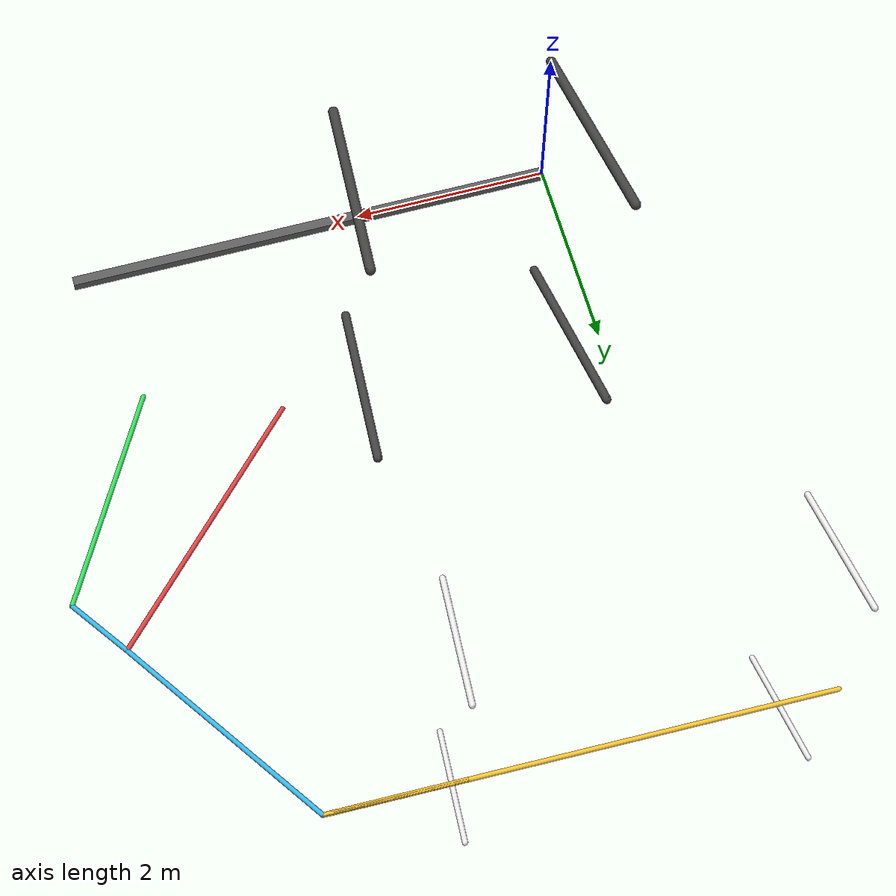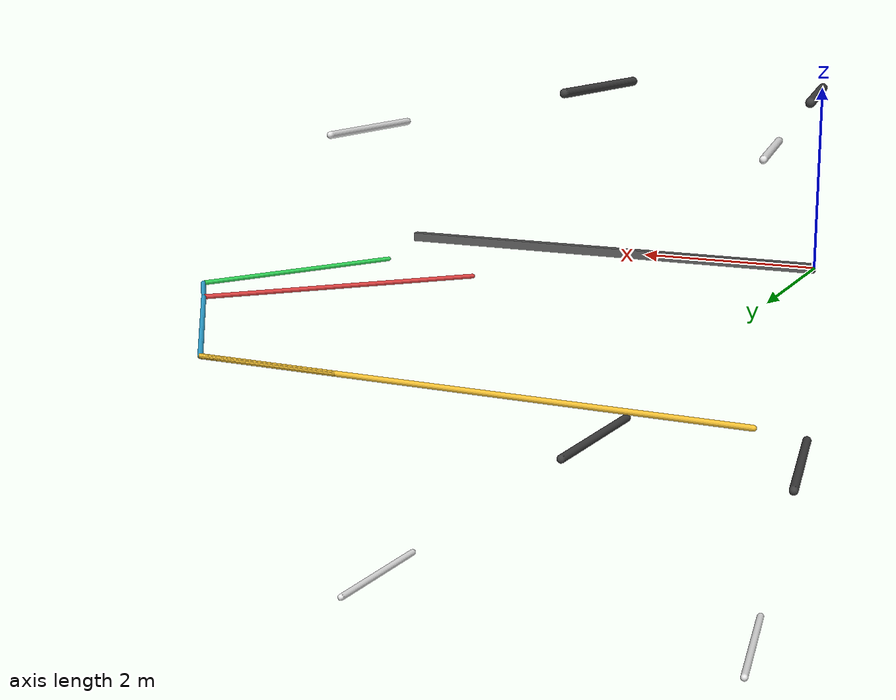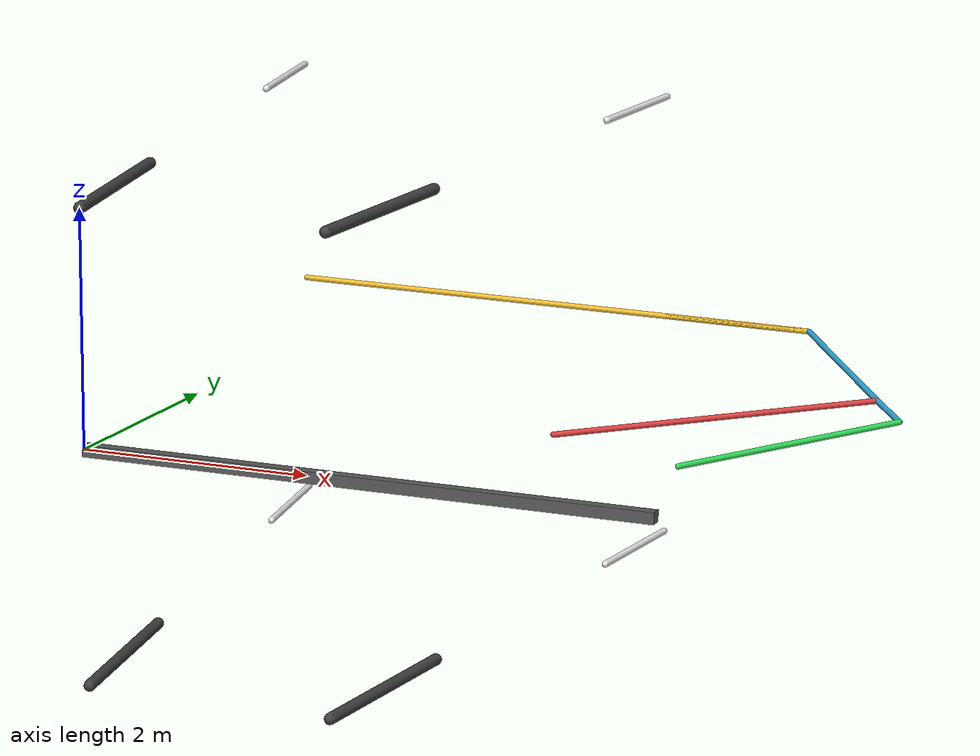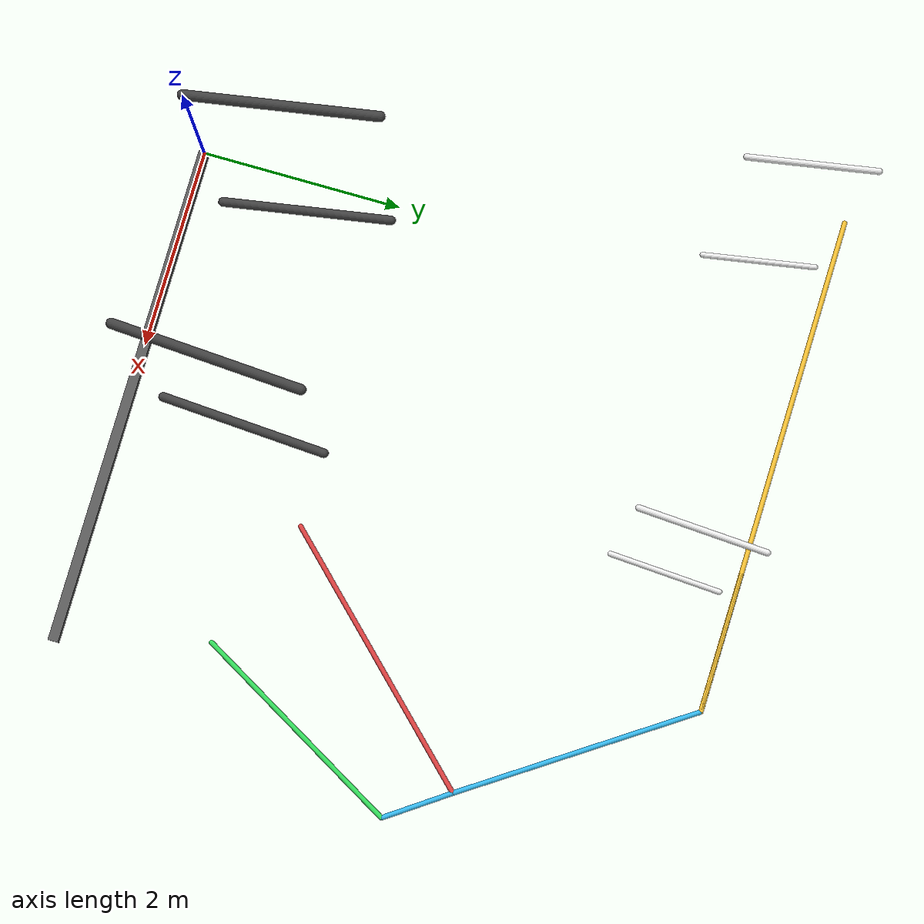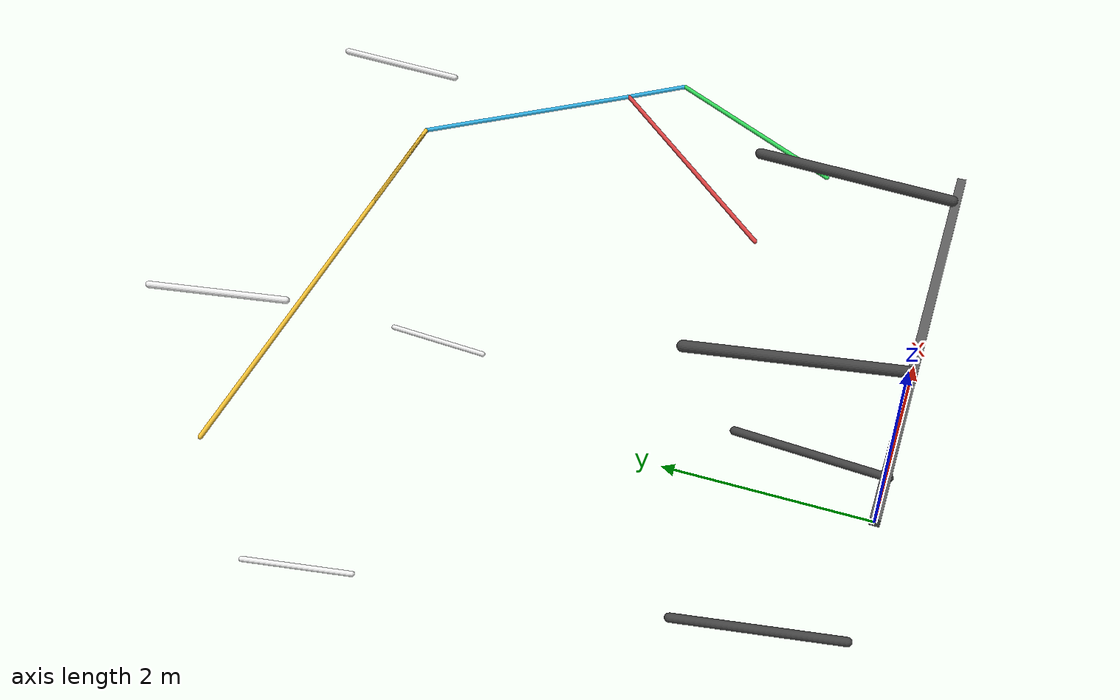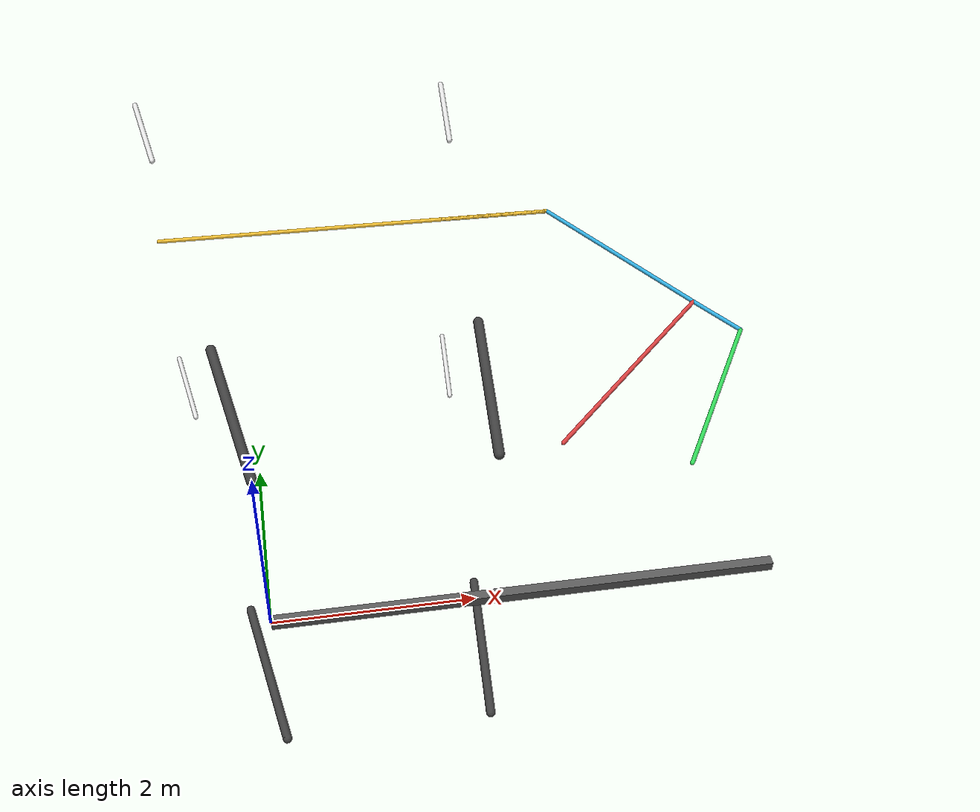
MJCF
<mujoco model="four_bar_mujoco_fk">
  <compiler angle="radian"/>
  <option gravity="0 0 0" timestep="0.001"/>

  <default>
    <joint damping="0.1" armature="0.001"/>
    <geom type="capsule" size="0.025" rgba="0.7 0.7 0.7 1"/>
    <site size="0.01" rgba="1 1 0 1"/>
  </default>

  <worldbody>
    <body name="ground" pos="0 0 0">
      <geom type="box" pos="2.5 0 0" size="2.5 0.05 0.05" rgba="0.35 0.35 0.35 1"/>

      <site name="ground_af0" pos="0 0 2"/>
      <site name="ground_af1" pos="0 0 -2"/>
      <site name="ground_ab0" pos="2.186792 0 2"/>
      <site name="ground_ab1" pos="2.186792 0 -2"/>

      <body name="crank" pos="3.28661 1.962118 0">
        <joint name="crank_joint" type="hinge" axis="0 0 1" range="-3.1415926535 3.1415926535" ref="0"/>
        <geom fromto="0 0 0 2.044407 2.111437 0" rgba="0.85 0.25 0.25 1"/>

        <body name="coupler" pos="2.044407 2.111437 0">
          <joint name="coupler_joint" type="hinge" axis="0 0 1" range="-3.1415926535 3.1415926535" ref="0"/>
          <geom fromto="0 0 0 0.410557 -0.58651 0" rgba="0.2 0.7 0.9 1"/>
          <geom fromto="0 0 0 -1.390797 2.062341999 0" rgba="0.2 0.7 0.9 1"/>
          <site name="coupler_pin_rocker" pos="0.410557 -0.58651 0"/>

          <body name="top" pos="-1.390797 2.062341999 0">
            <joint name="top_joint" type="hinge" axis="0 0 1" range="-3.1415926535 3.1415926535" ref="0"/>
            <geom fromto="0 0 0 -4.991705 0.10115 0" rgba="0.95 0.75 0.2 1"/>
            <geom fromto="0 0 0 -1.381983 0.028004001 0" rgba="0.95 0.75 0.2 1"/>
            <site name="top_anchor_af0" pos="-4.991705 0.10115 2"/>
            <site name="top_anchor_af1" pos="-4.991705 0.10115 -2"/>
            <site name="top_anchor_ab0" pos="-1.381983 0.028004001 2"/>
            <site name="top_anchor_ab1" pos="-1.381983 0.028004001 -2"/>
            <site name="top_ee" pos="0 0 0"/>
          </body>
        </body>
      </body>

      <body name="rocker" pos="4.59369 1.459396 0">
        <joint name="rocker_joint" type="hinge" axis="0 0 1" range="-3.1415926535 3.1415926535" ref="0"/>
        <geom fromto="0 0 0 1.147884 2.027649 0" rgba="0.2 0.85 0.35 1"/>
        <site name="rocker_pin_coupler" pos="1.147884 2.027649 0"/>
      </body>

      <body name="Af0_yaw" pos="0 0 2" quat="0.6456620139765598 0 0 0.763623312705769">
        <inertial pos="0 0 0" mass="0.1" diaginertia="1e-4 1e-4 1e-4"/>
        <joint name="Af0_base_yaw_joint" type="hinge" axis="0 0 1" range="-3.1415926535 3.1415926535" ref="0"/>
        <body name="Af0_tube">
          <joint name="Af0_base_pitch_joint" type="hinge" axis="0 1 0" range="-1.5707963267 1.5707963267" ref="0"/>
          <geom fromto="0 0 0 1.8 0 0" size="0.05" rgba="0.25 0.25 0.25 1"/>
          <body name="Af0_rod" pos="5.125059366158866 0 0">
            <joint name="Af0_slide_joint" type="slide" axis="1 0 0" range="-5.125059366158866 2.874940633841134" ref="0"/>
            <geom fromto="0 0 0 1.2 0 0" size="0.03" rgba="0.9 0.9 0.9 1"/>
            <site name="Af0_rod_tip" pos="1.2 0 0"/>
          </body>
        </body>
      </body>

      <body name="Af1_yaw" pos="0 0 -2" quat="0.6456620139765598 0 0 0.763623312705769">
        <inertial pos="0 0 0" mass="0.1" diaginertia="1e-4 1e-4 1e-4"/>
        <joint name="Af1_base_yaw_joint" type="hinge" axis="0 0 1" range="-3.1415926535 3.1415926535" ref="0"/>
        <body name="Af1_tube">
          <joint name="Af1_base_pitch_joint" type="hinge" axis="0 1 0" range="-1.5707963267 1.5707963267" ref="0"/>
          <geom fromto="0 0 0 1.8 0 0" size="0.05" rgba="0.25 0.25 0.25 1"/>
          <body name="Af1_rod" pos="5.125059366158866 0 0">
            <joint name="Af1_slide_joint" type="slide" axis="1 0 0" range="-5.125059366158866 2.874940633841134" ref="0"/>
            <geom fromto="0 0 0 1.2 0 0" size="0.03" rgba="0.9 0.9 0.9 1"/>
            <site name="Af1_rod_tip" pos="1.2 0 0"/>
          </body>
        </body>
      </body>

      <body name="Ab0_yaw" pos="2.186792 0 2" quat="0.7280632631794374 0 0 0.685509945083592">
        <inertial pos="0 0 0" mass="0.1" diaginertia="1e-4 1e-4 1e-4"/>
        <joint name="Ab0_base_yaw_joint" type="hinge" axis="0 0 1" range="-3.1415926535 3.1415926535" ref="0"/>
        <body name="Ab0_tube">
          <joint name="Ab0_base_pitch_joint" type="hinge" axis="0 1 0" range="-1.5707963267 1.5707963267" ref="0"/>
          <geom fromto="0 0 0 1.8 0 0" size="0.05" rgba="0.25 0.25 0.25 1"/>
          <body name="Ab0_rod" pos="4.975082746476033 0 0">
            <joint name="Ab0_slide_joint" type="slide" axis="1 0 0" range="-4.975082746476033 3.024917253523967" ref="0"/>
            <geom fromto="0 0 0 1.2 0 0" size="0.03" rgba="0.9 0.9 0.9 1"/>
            <site name="Ab0_rod_tip" pos="1.2 0 0"/>
          </body>
        </body>
      </body>

      <body name="Ab1_yaw" pos="2.186792 0 -2" quat="0.7280632631794374 0 0 0.685509945083592">
        <inertial pos="0 0 0" mass="0.1" diaginertia="1e-4 1e-4 1e-4"/>
        <joint name="Ab1_base_yaw_joint" type="hinge" axis="0 0 1" range="-3.1415926535 3.1415926535" ref="0"/>
        <body name="Ab1_tube">
          <joint name="Ab1_base_pitch_joint" type="hinge" axis="0 1 0" range="-1.5707963267 1.5707963267" ref="0"/>
          <geom fromto="0 0 0 1.8 0 0" size="0.05" rgba="0.25 0.25 0.25 1"/>
          <body name="Ab1_rod" pos="4.975082746476033 0 0">
            <joint name="Ab1_slide_joint" type="slide" axis="1 0 0" range="-4.975082746476033 3.024917253523967" ref="0"/>
            <geom fromto="0 0 0 1.2 0 0" size="0.03" rgba="0.9 0.9 0.9 1"/>
            <site name="Ab1_rod_tip" pos="1.2 0 0"/>
          </body>
        </body>
      </body>
    </body>
  </worldbody>

  <equality>
    <connect name="loop_coupler_rocker" body1="coupler" body2="rocker"
             anchor="0.410557 -0.58651 0" solref="0.0005 1" solimp="0.97 0.995 0.0001"/>

    <connect name="af0_tip_to_top" body1="Af0_rod" body2="top"
             anchor="1.2 0 0" solref="0.0005 1" solimp="0.97 0.995 0.0001"/>
    <connect name="af1_tip_to_top" body1="Af1_rod" body2="top"
             anchor="1.2 0 0" solref="0.0005 1" solimp="0.97 0.995 0.0001"/>
    <connect name="ab0_tip_to_top" body1="Ab0_rod" body2="top"
             anchor="1.2 0 0" solref="0.0005 1" solimp="0.97 0.995 0.0001"/>
    <connect name="ab1_tip_to_top" body1="Ab1_rod" body2="top"
             anchor="1.2 0 0" solref="0.0005 1" solimp="0.97 0.995 0.0001"/>
  </equality>

  <contact>
    <exclude body1="coupler" body2="rocker"/>
    <exclude body1="Af0_rod" body2="top"/>
    <exclude body1="Af1_rod" body2="top"/>
    <exclude body1="Ab0_rod" body2="top"/>
    <exclude body1="Ab1_rod" body2="top"/>
  </contact>
</mujoco>
